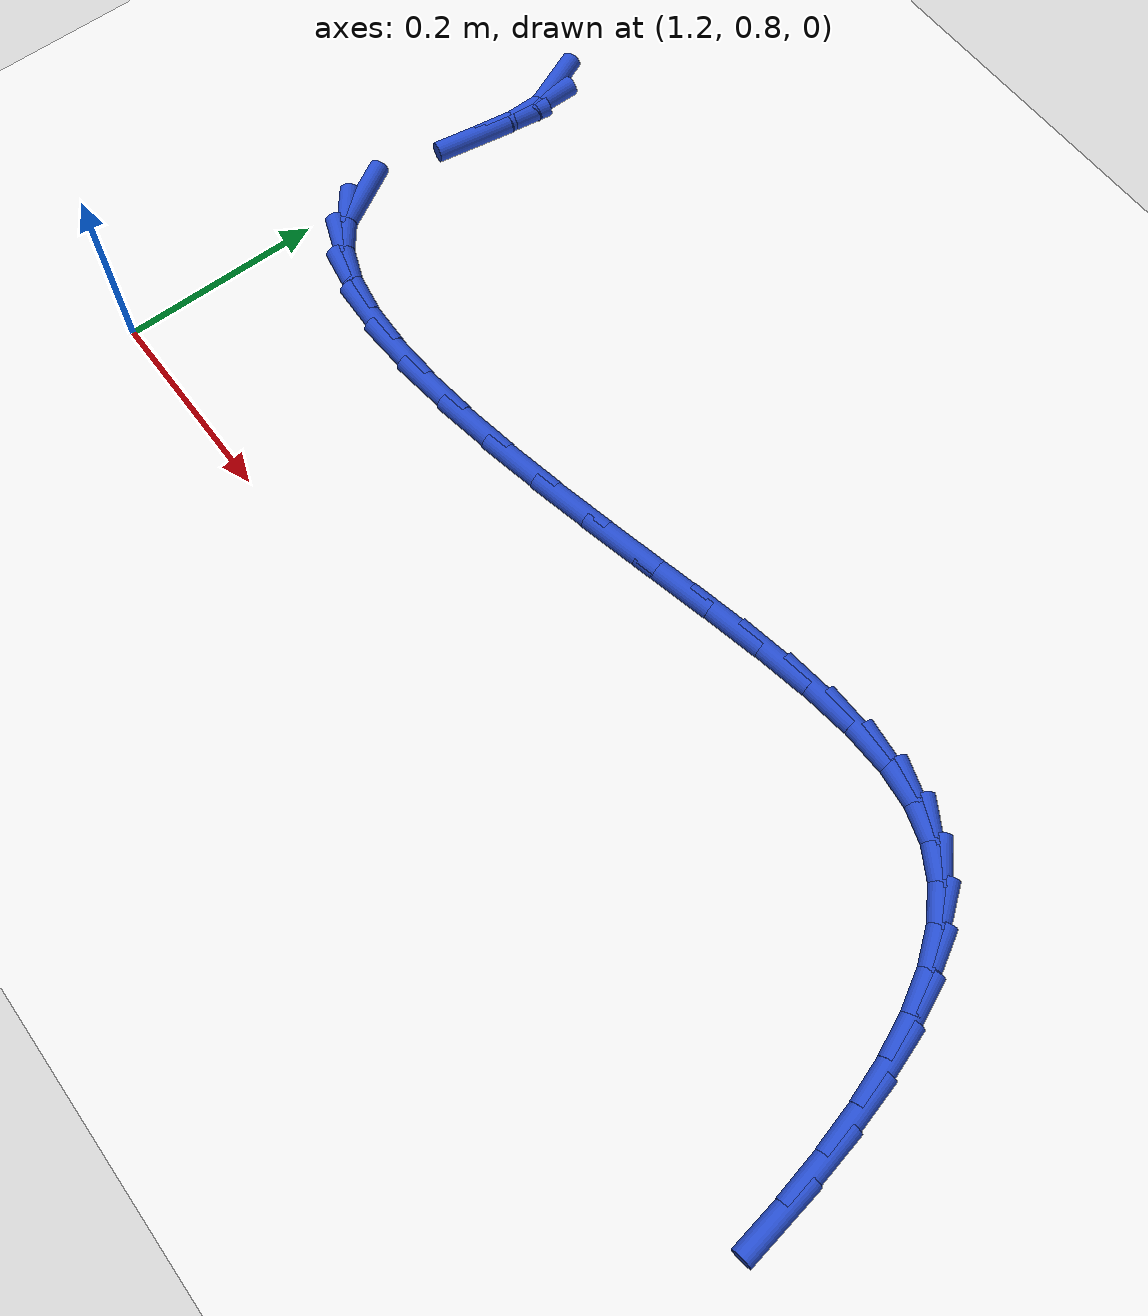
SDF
<sdf version="1.6">
 <world name="default">
  <model name="ground_plane">
   <static>1</static>
   <link name="link">
    <collision name="collision">
     <geometry><plane><normal>0 0 1</normal><size>100 100</size></plane></geometry>
     <surface><friction><ode><mu>100</mu><mu2>50</mu2></ode></friction></surface>
    </collision>
    <visual name="visual">
     <cast_shadows>0</cast_shadows>
     <geometry><plane><normal>0 0 1</normal><size>100 100</size></plane></geometry>
     <material>
      <script><uri>file://media/materials/scripts/gazebo.material</uri><name>Gazebo/WhiteGlow</name></script>
     </material>
    </visual>
   </link>
  </model>
  <model name="line">
   <link name="link_42">
    <pose>1.21135153120936 1.2930688993127541 0.01 0 1.57 -1.170368838219025</pose>
    <collision name="collision">
     <geometry><cylinder><radius>0.01</radius><length>0.08</length></cylinder></geometry>
    </collision>
    <visual name="visual">
     <material>
      <script><name>Gazebo/Blue</name><uri>file://media/materials/scripts/gazebo.material</uri></script>
     </material>
     <geometry><cylinder><radius>0.01</radius><length>0.08</length></cylinder></geometry>
    </visual>
   </link>
   <link name="link_43">
    <pose>1.2213047982837897 1.2695552385785476 0.01 0 1.57 -1.5660183303593078</pose>
    <collision name="collision">
     <geometry><cylinder><radius>0.01</radius><length>0.08</length></cylinder></geometry>
    </collision>
    <visual name="visual">
     <material>
      <script><name>Gazebo/Blue</name><uri>file://media/materials/scripts/gazebo.material</uri></script>
     </material>
     <geometry><cylinder><radius>0.01</radius><length>0.08</length></cylinder></geometry>
    </visual>
   </link>
   <link name="link_44">
    <pose>1.2214722191125873 1.2345155400308456 0.01 0 1.57 1.41578072529366</pose>
    <collision name="collision">
     <geometry><cylinder><radius>0.01</radius><length>0.08</length></cylinder></geometry>
    </collision>
    <visual name="visual">
     <material>
      <script><name>Gazebo/Blue</name><uri>file://media/materials/scripts/gazebo.material</uri></script>
     </material>
     <geometry><cylinder><radius>0.01</radius><length>0.08</length></cylinder></geometry>
    </visual>
   </link>
   <link name="link_45">
    <pose>1.21460159353411 1.1905489727272818 0.01 0 1.57 1.397124993248544</pose>
    <collision name="collision">
     <geometry><cylinder><radius>0.01</radius><length>0.08</length></cylinder></geometry>
    </collision>
    <visual name="visual">
     <material>
      <script><name>Gazebo/Blue</name><uri>file://media/materials/scripts/gazebo.material</uri></script>
     </material>
     <geometry><cylinder><radius>0.01</radius><length>0.08</length></cylinder></geometry>
    </visual>
   </link>
   <link name="link_48">
    <pose>1.207633482128626 1.0597470938440388 0.01 0 1.57 -1.0577176716662882</pose>
    <collision name="collision">
     <geometry><cylinder><radius>0.01</radius><length>0.08</length></cylinder></geometry>
    </collision>
    <visual name="visual">
     <material>
      <script><name>Gazebo/Blue</name><uri>file://media/materials/scripts/gazebo.material</uri></script>
     </material>
     <geometry><cylinder><radius>0.01</radius><length>0.08</length></cylinder></geometry>
    </visual>
   </link>
   <link name="link_49">
    <pose>1.2240368579263723 1.0306325142080293 0.01 0 1.57 -0.6774271405622254</pose>
    <collision name="collision">
     <geometry><cylinder><radius>0.01</radius><length>0.08</length></cylinder></geometry>
    </collision>
    <visual name="visual">
     <material>
      <script><name>Gazebo/Blue</name><uri>file://media/materials/scripts/gazebo.material</uri></script>
     </material>
     <geometry><cylinder><radius>0.01</radius><length>0.08</length></cylinder></geometry>
    </visual>
   </link>
   <link name="link_50">
    <pose>1.2501751532350187 1.0096064809616627 0.01 0 1.57 -0.3794046085265678</pose>
    <collision name="collision">
     <geometry><cylinder><radius>0.01</radius><length>0.08</length></cylinder></geometry>
    </collision>
    <visual name="visual">
     <material>
      <script><name>Gazebo/Blue</name><uri>file://media/materials/scripts/gazebo.material</uri></script>
     </material>
     <geometry><cylinder><radius>0.01</radius><length>0.08</length></cylinder></geometry>
    </visual>
   </link>
   <link name="link_51">
    <pose>1.2847893090233062 0.9958050378522942 0.01 0 1.57 -0.1760368268179505</pose>
    <collision name="collision">
     <geometry><cylinder><radius>0.01</radius><length>0.08</length></cylinder></geometry>
    </collision>
    <visual name="visual">
     <material>
      <script><name>Gazebo/Blue</name><uri>file://media/materials/scripts/gazebo.material</uri></script>
     </material>
     <geometry><cylinder><radius>0.01</radius><length>0.08</length></cylinder></geometry>
    </visual>
   </link>
   <link name="link_52">
    <pose>1.326620266259976 0.9883642286272787 0.01 0 1.57 -0.04065940591418247</pose>
    <collision name="collision">
     <geometry><cylinder><radius>0.01</radius><length>0.08</length></cylinder></geometry>
    </collision>
    <visual name="visual">
     <material>
      <script><name>Gazebo/Blue</name><uri>file://media/materials/scripts/gazebo.material</uri></script>
     </material>
     <geometry><cylinder><radius>0.01</radius><length>0.08</length></cylinder></geometry>
    </visual>
   </link>
   <link name="link_53">
    <pose>1.3744089659137666 0.9864200970339713 0.01 0 1.57 0.051178813620971625</pose>
    <collision name="collision">
     <geometry><cylinder><radius>0.01</radius><length>0.08</length></cylinder></geometry>
    </collision>
    <visual name="visual">
     <material>
      <script><name>Gazebo/Blue</name><uri>file://media/materials/scripts/gazebo.material</uri></script>
     </material>
     <geometry><cylinder><radius>0.01</radius><length>0.08</length></cylinder></geometry>
    </visual>
   </link>
   <link name="link_54">
    <pose>1.4268963489534197 0.9891086868197274 0.01 0 1.57 0.11495139839888693</pose>
    <collision name="collision">
     <geometry><cylinder><radius>0.01</radius><length>0.08</length></cylinder></geometry>
    </collision>
    <visual name="visual">
     <material>
      <script><name>Gazebo/Blue</name><uri>file://media/materials/scripts/gazebo.material</uri></script>
     </material>
     <geometry><cylinder><radius>0.01</radius><length>0.08</length></cylinder></geometry>
    </visual>
   </link>
   <link name="link_55">
    <pose>1.4828233563476758 0.9955660417319019 0.01 0 1.57 0.15974496204301103</pose>
    <collision name="collision">
     <geometry><cylinder><radius>0.01</radius><length>0.08</length></cylinder></geometry>
    </collision>
    <visual name="visual">
     <material>
      <script><name>Gazebo/Blue</name><uri>file://media/materials/scripts/gazebo.material</uri></script>
     </material>
     <geometry><cylinder><radius>0.01</radius><length>0.08</length></cylinder></geometry>
    </visual>
   </link>
   <link name="link_56">
    <pose>1.540930929065274 1.0049282055178506 0.01 0 1.57 0.19082573948042272</pose>
    <collision name="collision">
     <geometry><cylinder><radius>0.01</radius><length>0.08</length></cylinder></geometry>
    </collision>
    <visual name="visual">
     <material>
      <script><name>Gazebo/Blue</name><uri>file://media/materials/scripts/gazebo.material</uri></script>
     </material>
     <geometry><cylinder><radius>0.01</radius><length>0.08</length></cylinder></geometry>
    </visual>
   </link>
   <link name="link_57">
    <pose>1.599960008074955 1.0163312219249274 0.01 0 1.57 0.21114476324464695</pose>
    <collision name="collision">
     <geometry><cylinder><radius>0.01</radius><length>0.08</length></cylinder></geometry>
    </collision>
    <visual name="visual">
     <material>
      <script><name>Gazebo/Blue</name><uri>file://media/materials/scripts/gazebo.material</uri></script>
     </material>
     <geometry><cylinder><radius>0.01</radius><length>0.08</length></cylinder></geometry>
    </visual>
   </link>
   <link name="link_58">
    <pose>1.6586515343454602 1.0289111347004891 0.01 0 1.57 0.22208944850847645</pose>
    <collision name="collision">
     <geometry><cylinder><radius>0.01</radius><length>0.08</length></cylinder></geometry>
    </collision>
    <visual name="visual">
     <material>
      <script><name>Gazebo/Blue</name><uri>file://media/materials/scripts/gazebo.material</uri></script>
     </material>
     <geometry><cylinder><radius>0.01</radius><length>0.08</length></cylinder></geometry>
    </visual>
   </link>
   <link name="link_59">
    <pose>1.715746448845528 1.0418039875918894 0.01 0 1.57 0.22306281276324214</pose>
    <collision name="collision">
     <geometry><cylinder><radius>0.01</radius><length>0.08</length></cylinder></geometry>
    </collision>
    <visual name="visual">
     <material>
      <script><name>Gazebo/Blue</name><uri>file://media/materials/scripts/gazebo.material</uri></script>
     </material>
     <geometry><cylinder><radius>0.01</radius><length>0.08</length></cylinder></geometry>
    </visual>
   </link>
   <link name="link_60">
    <pose>1.770101598423419 1.0541337796189507 0.01 0 1.57 0.20827431880052827</pose>
    <collision name="collision">
     <geometry><cylinder><radius>0.01</radius><length>0.08</length></cylinder></geometry>
    </collision>
    <visual name="visual">
     <material>
      <script><name>Gazebo/Blue</name><uri>file://media/materials/scripts/gazebo.material</uri></script>
     </material>
     <geometry><cylinder><radius>0.01</radius><length>0.08</length></cylinder></geometry>
    </visual>
   </link>
   <link name="link_61">
    <pose>1.821284290645547 1.0649506800198731 0.01 0 1.57 0.17229365721245574</pose>
    <collision name="collision">
     <geometry><cylinder><radius>0.01</radius><length>0.08</length></cylinder></geometry>
    </collision>
    <visual name="visual">
     <material>
      <script><name>Gazebo/Blue</name><uri>file://media/materials/scripts/gazebo.material</uri></script>
     </material>
     <geometry><cylinder><radius>0.01</radius><length>0.08</length></cylinder></geometry>
    </visual>
   </link>
   <link name="link_62">
    <pose>1.8691308928843535 1.0732768978287042 0.01 0 1.57 0.10910229659935702</pose>
    <collision name="collision">
     <geometry><cylinder><radius>0.01</radius><length>0.08</length></cylinder></geometry>
    </collision>
    <visual name="visual">
     <material>
      <script><name>Gazebo/Blue</name><uri>file://media/materials/scripts/gazebo.material</uri></script>
     </material>
     <geometry><cylinder><radius>0.01</radius><length>0.08</length></cylinder></geometry>
    </visual>
   </link>
   <link name="link_63">
    <pose>1.9134782810071733 1.0781345892376304 0.01 0 1.57 0.01010954121117528</pose>
    <collision name="collision">
     <geometry><cylinder><radius>0.01</radius><length>0.08</length></cylinder></geometry>
    </collision>
    <visual name="visual">
     <material>
      <script><name>Gazebo/Blue</name><uri>file://media/materials/scripts/gazebo.material</uri></script>
     </material>
     <geometry><cylinder><radius>0.01</radius><length>0.08</length></cylinder></geometry>
    </visual>
   </link>
   <link name="link_64">
    <pose>1.9541633308813398 1.0785459104388369 0.01 0 1.57 -0.13517040338248948</pose>
    <collision name="collision">
     <geometry><cylinder><radius>0.01</radius><length>0.08</length></cylinder></geometry>
    </collision>
    <visual name="visual">
     <material>
      <script><name>Gazebo/Blue</name><uri>file://media/materials/scripts/gazebo.material</uri></script>
     </material>
     <geometry><cylinder><radius>0.01</radius><length>0.08</length></cylinder></geometry>
    </visual>
   </link>
   <link name="link_65">
    <pose>1.9910229183741894 1.0735330176245104 0.01 0 1.57 -0.3341734298260708</pose>
    <collision name="collision">
     <geometry><cylinder><radius>0.01</radius><length>0.08</length></cylinder></geometry>
    </collision>
    <visual name="visual">
     <material>
      <script><name>Gazebo/Blue</name><uri>file://media/materials/scripts/gazebo.material</uri></script>
     </material>
     <geometry><cylinder><radius>0.01</radius><length>0.08</length></cylinder></geometry>
    </visual>
   </link>
   <link name="link_66">
    <pose>2.02389450208353 1.0621201799384714 0.01 0 1.57 -0.5660249683826148</pose>
    <collision name="collision">
     <geometry><cylinder><radius>0.01</radius><length>0.08</length></cylinder></geometry>
    </collision>
    <visual name="visual">
     <material>
      <script><name>Gazebo/Blue</name><uri>file://media/materials/scripts/gazebo.material</uri></script>
     </material>
     <geometry><cylinder><radius>0.01</radius><length>0.08</length></cylinder></geometry>
    </visual>
   </link>
   <link name="link_67">
    <pose>2.05274223687525 1.0437910608740357 0.01 0 1.57 -0.7785474076196227</pose>
    <collision name="collision">
     <geometry><cylinder><radius>0.01</radius><length>0.08</length></cylinder></geometry>
    </collision>
    <visual name="visual">
     <material>
      <script><name>Gazebo/Blue</name><uri>file://media/materials/scripts/gazebo.material</uri></script>
     </material>
     <geometry><cylinder><radius>0.01</radius><length>0.08</length></cylinder></geometry>
    </visual>
   </link>
   <link name="link_68">
    <pose>2.0778145202552096 1.0190599735613888 0.01 0 1.57 -0.9546072466959705</pose>
    <collision name="collision">
     <geometry><cylinder><radius>0.01</radius><length>0.08</length></cylinder></geometry>
    </collision>
    <visual name="visual">
     <material>
      <script><name>Gazebo/Blue</name><uri>file://media/materials/scripts/gazebo.material</uri></script>
     </material>
     <geometry><cylinder><radius>0.01</radius><length>0.08</length></cylinder></geometry>
    </visual>
   </link>
   <link name="link_69">
    <pose>2.099398453582266 0.9885815693714465 0.01 0 1.57 -1.0938090799718307</pose>
    <collision name="collision">
     <geometry><cylinder><radius>0.01</radius><length>0.08</length></cylinder></geometry>
    </collision>
    <visual name="visual">
     <material>
      <script><name>Gazebo/Blue</name><uri>file://media/materials/scripts/gazebo.material</uri></script>
     </material>
     <geometry><cylinder><radius>0.01</radius><length>0.08</length></cylinder></geometry>
    </visual>
   </link>
   <link name="link_70">
    <pose>2.1177811382152743 0.9530104996751259 0.01 0 1.57 -1.2018724791066593</pose>
    <collision name="collision">
     <geometry><cylinder><radius>0.01</radius><length>0.08</length></cylinder></geometry>
    </collision>
    <visual name="visual">
     <material>
      <script><name>Gazebo/Blue</name><uri>file://media/materials/scripts/gazebo.material</uri></script>
     </material>
     <geometry><cylinder><radius>0.01</radius><length>0.08</length></cylinder></geometry>
    </visual>
   </link>
   <link name="link_71">
    <pose>2.13324967551309 0.9130014158433419 0.01 0 1.57 -1.2855571731825293</pose>
    <collision name="collision">
     <geometry><cylinder><radius>0.01</radius><length>0.08</length></cylinder></geometry>
    </collision>
    <visual name="visual">
     <material>
      <script><name>Gazebo/Blue</name><uri>file://media/materials/scripts/gazebo.material</uri></script>
     </material>
     <geometry><cylinder><radius>0.01</radius><length>0.08</length></cylinder></geometry>
    </visual>
   </link>
   <link name="link_72">
    <pose>2.14609116683457 0.8692089692470123 0.01 0 1.57 -1.3506123489635364</pose>
    <collision name="collision">
     <geometry><cylinder><radius>0.01</radius><length>0.08</length></cylinder></geometry>
    </collision>
    <visual name="visual">
     <material>
      <script><name>Gazebo/Blue</name><uri>file://media/materials/scripts/gazebo.material</uri></script>
     </material>
     <geometry><cylinder><radius>0.01</radius><length>0.08</length></cylinder></geometry>
    </visual>
   </link>
   <link name="link_73">
    <pose>2.156592713538569 0.8222878112570525 0.01 0 1.57 -1.401392696347992</pose>
    <collision name="collision">
     <geometry><cylinder><radius>0.01</radius><length>0.08</length></cylinder></geometry>
    </collision>
    <visual name="visual">
     <material>
      <script><name>Gazebo/Blue</name><uri>file://media/materials/scripts/gazebo.material</uri></script>
     </material>
     <geometry><cylinder><radius>0.01</radius><length>0.08</length></cylinder></geometry>
    </visual>
   </link>
   <link name="link_74">
    <pose>2.1650414169839447 0.7728925932443786 0.01 0 1.57 -1.4410401699863957</pose>
    <collision name="collision">
     <geometry><cylinder><radius>0.01</radius><length>0.08</length></cylinder></geometry>
    </collision>
    <visual name="visual">
     <material>
      <script><name>Gazebo/Blue</name><uri>file://media/materials/scripts/gazebo.material</uri></script>
     </material>
     <geometry><cylinder><radius>0.01</radius><length>0.08</length></cylinder></geometry>
    </visual>
   </link>
  </model>
 </world>
</sdf>
